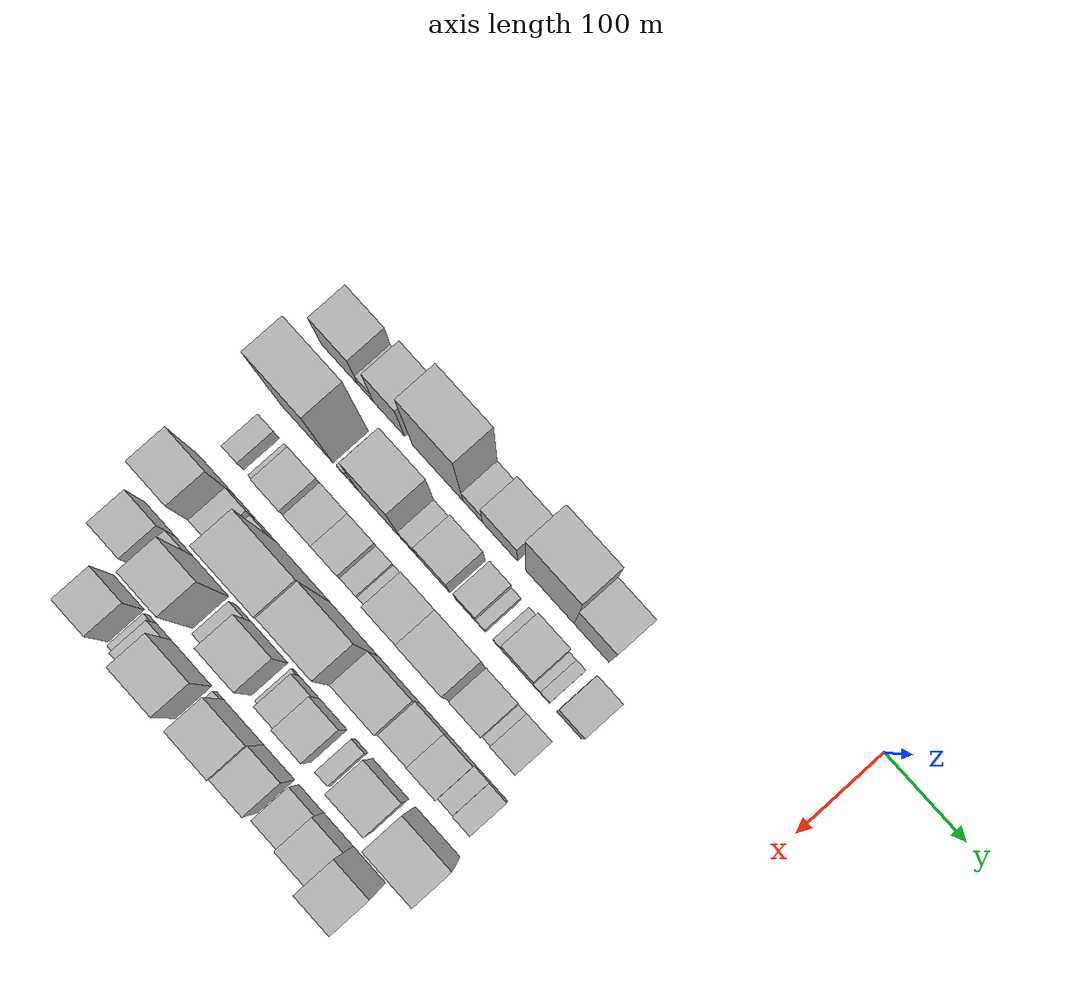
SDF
<sdf version="1.6">
 <world name="default">
  <model name="building_11">
   <static>1</static>
   <pose>100.0000 -549.3161 0 0.000000 0.000000 0.000000</pose>
   <link name="link">
    <pose>0 0 43.50 0 0 0</pose>
    <collision name="collision"><geometry><box><size>40.0000 47.1803 87.0000</size></box></geometry></collision>
    <visual name="visual">
     <cast_shadows>0</cast_shadows>
     <geometry><box><size>40.0000 47.1803 87.0000</size></box></geometry>
     <material>
      <script>
       <uri>model://HANNAS_wall/materials/scripts</uri>
       <uri>model://HANNAS_wall/materials/textures</uri>
       <name>vrc/HANNAS_wall</name>
      </script>
     </material>
    </visual>
   </link>
  </model>
  <model name="building_12">
   <static>1</static>
   <pose>100.0000 -515.8294 0 0.000000 0.000000 0.000000</pose>
   <link name="link">
    <pose>0 0 16.50 0 0 0</pose>
    <collision name="collision"><geometry><box><size>40.0000 19.7931 33.0000</size></box></geometry></collision>
    <visual name="visual">
     <cast_shadows>0</cast_shadows>
     <geometry><box><size>40.0000 19.7931 33.0000</size></box></geometry>
     <material>
      <script>
       <uri>model://HANNAS_wall/materials/scripts</uri>
       <uri>model://HANNAS_wall/materials/textures</uri>
       <name>vrc/HANNAS_wall</name>
      </script>
     </material>
    </visual>
   </link>
  </model>
  <model name="building_13">
   <static>1</static>
   <pose>100.0000 -486.1021 0 0.000000 0.000000 0.000000</pose>
   <link name="link">
    <pose>0 0 52.50 0 0 0</pose>
    <collision name="collision"><geometry><box><size>40.0000 39.6614 105.0000</size></box></geometry></collision>
    <visual name="visual">
     <cast_shadows>0</cast_shadows>
     <geometry><box><size>40.0000 39.6614 105.0000</size></box></geometry>
     <material>
      <script>
       <uri>model://HANNAS_wall/materials/scripts</uri>
       <uri>model://HANNAS_wall/materials/textures</uri>
       <name>vrc/HANNAS_wall</name>
      </script>
     </material>
    </visual>
   </link>
  </model>
  <model name="building_14">
   <static>1</static>
   <pose>100.0000 -424.4190 0 0.000000 0.000000 0.000000</pose>
   <link name="link">
    <pose>0 0 93.00 0 0 0</pose>
    <collision name="collision"><geometry><box><size>40.0000 63.7049 186.0000</size></box></geometry></collision>
    <visual name="visual">
     <cast_shadows>0</cast_shadows>
     <geometry><box><size>40.0000 63.7049 186.0000</size></box></geometry>
     <material>
      <script>
       <uri>model://HANNAS_wall/materials/scripts</uri>
       <uri>model://HANNAS_wall/materials/textures</uri>
       <name>vrc/HANNAS_wall</name>
      </script>
     </material>
    </visual>
   </link>
  </model>
  <model name="building_15">
   <static>1</static>
   <pose>100.0000 -380.0827 0 0.000000 0.000000 0.000000</pose>
   <link name="link">
    <pose>0 0 21.00 0 0 0</pose>
    <collision name="collision"><geometry><box><size>40.0000 24.9676 42.0000</size></box></geometry></collision>
    <visual name="visual">
     <cast_shadows>0</cast_shadows>
     <geometry><box><size>40.0000 24.9676 42.0000</size></box></geometry>
     <material>
      <script>
       <uri>model://HANNAS_wall/materials/scripts</uri>
       <uri>model://HANNAS_wall/materials/textures</uri>
       <name>vrc/HANNAS_wall</name>
      </script>
     </material>
    </visual>
   </link>
  </model>
  <model name="building_16">
   <static>1</static>
   <pose>100.0000 -345.6989 0 0.000000 0.000000 0.000000</pose>
   <link name="link">
    <pose>0 0 39.00 0 0 0</pose>
    <collision name="collision"><geometry><box><size>40.0000 43.8001 78.0000</size></box></geometry></collision>
    <visual name="visual">
     <cast_shadows>0</cast_shadows>
     <geometry><box><size>40.0000 43.8001 78.0000</size></box></geometry>
     <material>
      <script>
       <uri>model://HANNAS_wall/materials/scripts</uri>
       <uri>model://HANNAS_wall/materials/textures</uri>
       <name>vrc/HANNAS_wall</name>
      </script>
     </material>
    </visual>
   </link>
  </model>
  <model name="building_17">
   <static>1</static>
   <pose>100.0000 -283.1865 0 0.000000 0.000000 0.000000</pose>
   <link name="link">
    <pose>0 0 100.50 0 0 0</pose>
    <collision name="collision"><geometry><box><size>40.0000 61.2247 201.0000</size></box></geometry></collision>
    <visual name="visual">
     <cast_shadows>0</cast_shadows>
     <geometry><box><size>40.0000 61.2247 201.0000</size></box></geometry>
     <material>
      <script>
       <uri>model://HANNAS_wall/materials/scripts</uri>
       <uri>model://HANNAS_wall/materials/textures</uri>
       <name>vrc/HANNAS_wall</name>
      </script>
     </material>
    </visual>
   </link>
  </model>
  <model name="building_18">
   <static>1</static>
   <pose>100.0000 -230.8373 0 0.000000 0.000000 0.000000</pose>
   <link name="link">
    <pose>0 0 64.50 0 0 0</pose>
    <collision name="collision"><geometry><box><size>40.0000 43.4737 129.0000</size></box></geometry></collision>
    <visual name="visual">
     <cast_shadows>0</cast_shadows>
     <geometry><box><size>40.0000 43.4737 129.0000</size></box></geometry>
     <material>
      <script>
       <uri>model://HANNAS_wall/materials/scripts</uri>
       <uri>model://HANNAS_wall/materials/textures</uri>
       <name>vrc/HANNAS_wall</name>
      </script>
     </material>
    </visual>
   </link>
  </model>
  <model name="building_62">
   <static>1</static>
   <pose>160.0000 -522.8140 0 0.000000 0.000000 0.000000</pose>
   <link name="link">
    <pose>0 0 96.00 0 0 0</pose>
    <collision name="collision"><geometry><box><size>40.0000 65.7498 192.0000</size></box></geometry></collision>
    <visual name="visual">
     <cast_shadows>0</cast_shadows>
     <geometry><box><size>40.0000 65.7498 192.0000</size></box></geometry>
     <material>
      <script>
       <uri>model://HANNAS_wall/materials/scripts</uri>
       <uri>model://HANNAS_wall/materials/textures</uri>
       <name>vrc/HANNAS_wall</name>
      </script>
     </material>
    </visual>
   </link>
  </model>
  <model name="building_63">
   <static>1</static>
   <pose>160.0000 -477.0255 0 0.000000 0.000000 0.000000</pose>
   <link name="link">
    <pose>0 0 12.00 0 0 0</pose>
    <collision name="collision"><geometry><box><size>40.0000 9.8272 24.0000</size></box></geometry></collision>
    <visual name="visual">
     <cast_shadows>0</cast_shadows>
     <geometry><box><size>40.0000 9.8272 24.0000</size></box></geometry>
     <material>
      <script>
       <uri>model://HANNAS_wall/materials/scripts</uri>
       <uri>model://HANNAS_wall/materials/textures</uri>
       <name>vrc/HANNAS_wall</name>
      </script>
     </material>
    </visual>
   </link>
  </model>
  <model name="building_64">
   <static>1</static>
   <pose>160.0000 -461.7364 0 0.000000 0.000000 0.000000</pose>
   <link name="link">
    <pose>0 0 12.00 0 0 0</pose>
    <collision name="collision"><geometry><box><size>40.0000 10.7509 24.0000</size></box></geometry></collision>
    <visual name="visual">
     <cast_shadows>0</cast_shadows>
     <geometry><box><size>40.0000 10.7509 24.0000</size></box></geometry>
     <material>
      <script>
       <uri>model://HANNAS_wall/materials/scripts</uri>
       <uri>model://HANNAS_wall/materials/textures</uri>
       <name>vrc/HANNAS_wall</name>
      </script>
     </material>
    </visual>
   </link>
  </model>
  <model name="building_65">
   <static>1</static>
   <pose>160.0000 -429.8946 0 0.000000 0.000000 0.000000</pose>
   <link name="link">
    <pose>0 0 73.50 0 0 0</pose>
    <collision name="collision"><geometry><box><size>40.0000 52.9326 147.0000</size></box></geometry></collision>
    <visual name="visual">
     <cast_shadows>0</cast_shadows>
     <geometry><box><size>40.0000 52.9326 147.0000</size></box></geometry>
     <material>
      <script>
       <uri>model://HANNAS_wall/materials/scripts</uri>
       <uri>model://HANNAS_wall/materials/textures</uri>
       <name>vrc/HANNAS_wall</name>
      </script>
     </material>
    </visual>
   </link>
  </model>
  <model name="building_66">
   <static>1</static>
   <pose>160.0000 -392.6424 0 0.000000 0.000000 0.000000</pose>
   <link name="link">
    <pose>0 0 21.00 0 0 0</pose>
    <collision name="collision"><geometry><box><size>40.0000 21.5718 42.0000</size></box></geometry></collision>
    <visual name="visual">
     <cast_shadows>0</cast_shadows>
     <geometry><box><size>40.0000 21.5718 42.0000</size></box></geometry>
     <material>
      <script>
       <uri>model://HANNAS_wall/materials/scripts</uri>
       <uri>model://HANNAS_wall/materials/textures</uri>
       <name>vrc/HANNAS_wall</name>
      </script>
     </material>
    </visual>
   </link>
  </model>
  <model name="building_67">
   <static>1</static>
   <pose>160.0000 -361.8593 0 0.000000 0.000000 0.000000</pose>
   <link name="link">
    <pose>0 0 34.50 0 0 0</pose>
    <collision name="collision"><geometry><box><size>40.0000 39.9946 69.0000</size></box></geometry></collision>
    <visual name="visual">
     <cast_shadows>0</cast_shadows>
     <geometry><box><size>40.0000 39.9946 69.0000</size></box></geometry>
     <material>
      <script>
       <uri>model://HANNAS_wall/materials/scripts</uri>
       <uri>model://HANNAS_wall/materials/textures</uri>
       <name>vrc/HANNAS_wall</name>
      </script>
     </material>
    </visual>
   </link>
  </model>
  <model name="building_68">
   <static>1</static>
   <pose>160.0000 -321.7250 0 0.000000 0.000000 0.000000</pose>
   <link name="link">
    <pose>0 0 24.00 0 0 0</pose>
    <collision name="collision"><geometry><box><size>40.0000 26.2739 48.0000</size></box></geometry></collision>
    <visual name="visual">
     <cast_shadows>0</cast_shadows>
     <geometry><box><size>40.0000 26.2739 48.0000</size></box></geometry>
     <material>
      <script>
       <uri>model://HANNAS_wall/materials/scripts</uri>
       <uri>model://HANNAS_wall/materials/textures</uri>
       <name>vrc/HANNAS_wall</name>
      </script>
     </material>
    </visual>
   </link>
  </model>
  <model name="building_69">
   <static>1</static>
   <pose>160.0000 -302.8230 0 0.000000 0.000000 0.000000</pose>
   <link name="link">
    <pose>0 0 12.00 0 0 0</pose>
    <collision name="collision"><geometry><box><size>40.0000 11.5301 24.0000</size></box></geometry></collision>
    <visual name="visual">
     <cast_shadows>0</cast_shadows>
     <geometry><box><size>40.0000 11.5301 24.0000</size></box></geometry>
     <material>
      <script>
       <uri>model://HANNAS_wall/materials/scripts</uri>
       <uri>model://HANNAS_wall/materials/textures</uri>
       <name>vrc/HANNAS_wall</name>
      </script>
     </material>
    </visual>
   </link>
  </model>
  <model name="building_70">
   <static>1</static>
   <pose>160.0000 -281.6343 0 0.000000 0.000000 0.000000</pose>
   <link name="link">
    <pose>0 0 12.00 0 0 0</pose>
    <collision name="collision"><geometry><box><size>40.0000 10.8474 24.0000</size></box></geometry></collision>
    <visual name="visual">
     <cast_shadows>0</cast_shadows>
     <geometry><box><size>40.0000 10.8474 24.0000</size></box></geometry>
     <material>
      <script>
       <uri>model://HANNAS_wall/materials/scripts</uri>
       <uri>model://HANNAS_wall/materials/textures</uri>
       <name>vrc/HANNAS_wall</name>
      </script>
     </material>
    </visual>
   </link>
  </model>
  <model name="building_71">
   <static>1</static>
   <pose>160.0000 -256.8129 0 0.000000 0.000000 0.000000</pose>
   <link name="link">
    <pose>0 0 36.00 0 0 0</pose>
    <collision name="collision"><geometry><box><size>40.0000 38.7953 72.0000</size></box></geometry></collision>
    <visual name="visual">
     <cast_shadows>0</cast_shadows>
     <geometry><box><size>40.0000 38.7953 72.0000</size></box></geometry>
     <material>
      <script>
       <uri>model://HANNAS_wall/materials/scripts</uri>
       <uri>model://HANNAS_wall/materials/textures</uri>
       <name>vrc/HANNAS_wall</name>
      </script>
     </material>
    </visual>
   </link>
  </model>
  <model name="building_72">
   <static>1</static>
   <pose>160.0000 -233.0048 0 0.000000 0.000000 0.000000</pose>
   <link name="link">
    <pose>0 0 10.50 0 0 0</pose>
    <collision name="collision"><geometry><box><size>40.0000 8.8210 21.0000</size></box></geometry></collision>
    <visual name="visual">
     <cast_shadows>0</cast_shadows>
     <geometry><box><size>40.0000 8.8210 21.0000</size></box></geometry>
     <material>
      <script>
       <uri>model://HANNAS_wall/materials/scripts</uri>
       <uri>model://HANNAS_wall/materials/textures</uri>
       <name>vrc/HANNAS_wall</name>
      </script>
     </material>
    </visual>
   </link>
  </model>
  <model name="building_73">
   <static>1</static>
   <pose>160.0000 -222.7532 0 0.000000 0.000000 0.000000</pose>
   <link name="link">
    <pose>0 0 12.00 0 0 0</pose>
    <collision name="collision"><geometry><box><size>40.0000 11.6821 24.0000</size></box></geometry></collision>
    <visual name="visual">
     <cast_shadows>0</cast_shadows>
     <geometry><box><size>40.0000 11.6821 24.0000</size></box></geometry>
     <material>
      <script>
       <uri>model://HANNAS_wall/materials/scripts</uri>
       <uri>model://HANNAS_wall/materials/textures</uri>
       <name>vrc/HANNAS_wall</name>
      </script>
     </material>
    </visual>
   </link>
  </model>
  <model name="building_74">
   <static>1</static>
   <pose>160.0000 -192.8950 0 0.000000 0.000000 0.000000</pose>
   <link name="link">
    <pose>0 0 49.50 0 0 0</pose>
    <collision name="collision"><geometry><box><size>40.0000 30.0343 99.0000</size></box></geometry></collision>
    <visual name="visual">
     <cast_shadows>0</cast_shadows>
     <geometry><box><size>40.0000 30.0343 99.0000</size></box></geometry>
     <material>
      <script>
       <uri>model://HANNAS_wall/materials/scripts</uri>
       <uri>model://HANNAS_wall/materials/textures</uri>
       <name>vrc/HANNAS_wall</name>
      </script>
     </material>
    </visual>
   </link>
  </model>
  <model name="building_119">
   <static>1</static>
   <pose>220.0000 -545.6954 0 0.000000 0.000000 0.000000</pose>
   <link name="link">
    <pose>0 0 16.50 0 0 0</pose>
    <collision name="collision"><geometry><box><size>40.0000 19.6046 33.0000</size></box></geometry></collision>
    <visual name="visual">
     <cast_shadows>0</cast_shadows>
     <geometry><box><size>40.0000 19.6046 33.0000</size></box></geometry>
     <material>
      <script>
       <uri>model://HANNAS_wall/materials/scripts</uri>
       <uri>model://HANNAS_wall/materials/textures</uri>
       <name>vrc/HANNAS_wall</name>
      </script>
     </material>
    </visual>
   </link>
  </model>
  <model name="building_120">
   <static>1</static>
   <pose>220.0000 -521.4734 0 0.000000 0.000000 0.000000</pose>
   <link name="link">
    <pose>0 0 9.00 0 0 0</pose>
    <collision name="collision"><geometry><box><size>40.0000 8.8394 18.0000</size></box></geometry></collision>
    <visual name="visual">
     <cast_shadows>0</cast_shadows>
     <geometry><box><size>40.0000 8.8394 18.0000</size></box></geometry>
     <material>
      <script>
       <uri>model://HANNAS_wall/materials/scripts</uri>
       <uri>model://HANNAS_wall/materials/textures</uri>
       <name>vrc/HANNAS_wall</name>
      </script>
     </material>
    </visual>
   </link>
  </model>
  <model name="building_121">
   <static>1</static>
   <pose>220.0000 -494.6774 0 0.000000 0.000000 0.000000</pose>
   <link name="link">
    <pose>0 0 30.00 0 0 0</pose>
    <collision name="collision"><geometry><box><size>40.0000 34.7525 60.0000</size></box></geometry></collision>
    <visual name="visual">
     <cast_shadows>0</cast_shadows>
     <geometry><box><size>40.0000 34.7525 60.0000</size></box></geometry>
     <material>
      <script>
       <uri>model://HANNAS_wall/materials/scripts</uri>
       <uri>model://HANNAS_wall/materials/textures</uri>
       <name>vrc/HANNAS_wall</name>
      </script>
     </material>
    </visual>
   </link>
  </model>
  <model name="building_122">
   <static>1</static>
   <pose>220.0000 -456.3881 0 0.000000 0.000000 0.000000</pose>
   <link name="link">
    <pose>0 0 28.50 0 0 0</pose>
    <collision name="collision"><geometry><box><size>40.0000 33.8260 57.0000</size></box></geometry></collision>
    <visual name="visual">
     <cast_shadows>0</cast_shadows>
     <geometry><box><size>40.0000 33.8260 57.0000</size></box></geometry>
     <material>
      <script>
       <uri>model://HANNAS_wall/materials/scripts</uri>
       <uri>model://HANNAS_wall/materials/textures</uri>
       <name>vrc/HANNAS_wall</name>
      </script>
     </material>
    </visual>
   </link>
  </model>
  <model name="building_123">
   <static>1</static>
   <pose>220.0000 -423.2749 0 0.000000 0.000000 0.000000</pose>
   <link name="link">
    <pose>0 0 28.50 0 0 0</pose>
    <collision name="collision"><geometry><box><size>40.0000 32.4004 57.0000</size></box></geometry></collision>
    <visual name="visual">
     <cast_shadows>0</cast_shadows>
     <geometry><box><size>40.0000 32.4004 57.0000</size></box></geometry>
     <material>
      <script>
       <uri>model://HANNAS_wall/materials/scripts</uri>
       <uri>model://HANNAS_wall/materials/textures</uri>
       <name>vrc/HANNAS_wall</name>
      </script>
     </material>
    </visual>
   </link>
  </model>
  <model name="building_124">
   <static>1</static>
   <pose>220.0000 -397.0881 0 0.000000 0.000000 0.000000</pose>
   <link name="link">
    <pose>0 0 19.50 0 0 0</pose>
    <collision name="collision"><geometry><box><size>40.0000 19.9731 39.0000</size></box></geometry></collision>
    <visual name="visual">
     <cast_shadows>0</cast_shadows>
     <geometry><box><size>40.0000 19.9731 39.0000</size></box></geometry>
     <material>
      <script>
       <uri>model://HANNAS_wall/materials/scripts</uri>
       <uri>model://HANNAS_wall/materials/textures</uri>
       <name>vrc/HANNAS_wall</name>
      </script>
     </material>
    </visual>
   </link>
  </model>
  <model name="building_125">
   <static>1</static>
   <pose>220.0000 -378.5526 0 0.000000 0.000000 0.000000</pose>
   <link name="link">
    <pose>0 0 15.00 0 0 0</pose>
    <collision name="collision"><geometry><box><size>40.0000 17.0980 30.0000</size></box></geometry></collision>
    <visual name="visual">
     <cast_shadows>0</cast_shadows>
     <geometry><box><size>40.0000 17.0980 30.0000</size></box></geometry>
     <material>
      <script>
       <uri>model://HANNAS_wall/materials/scripts</uri>
       <uri>model://HANNAS_wall/materials/textures</uri>
       <name>vrc/HANNAS_wall</name>
      </script>
     </material>
    </visual>
   </link>
  </model>
  <model name="building_126">
   <static>1</static>
   <pose>220.0000 -346.0891 0 0.000000 0.000000 0.000000</pose>
   <link name="link">
    <pose>0 0 66.00 0 0 0</pose>
    <collision name="collision"><geometry><box><size>40.0000 39.8288 132.0000</size></box></geometry></collision>
    <visual name="visual">
     <cast_shadows>0</cast_shadows>
     <geometry><box><size>40.0000 39.8288 132.0000</size></box></geometry>
     <material>
      <script>
       <uri>model://HANNAS_wall/materials/scripts</uri>
       <uri>model://HANNAS_wall/materials/textures</uri>
       <name>vrc/HANNAS_wall</name>
      </script>
     </material>
    </visual>
   </link>
  </model>
  <model name="building_127">
   <static>1</static>
   <pose>220.0000 -300.0844 0 0.000000 0.000000 0.000000</pose>
   <link name="link">
    <pose>0 0 70.50 0 0 0</pose>
    <collision name="collision"><geometry><box><size>40.0000 52.1806 141.0000</size></box></geometry></collision>
    <visual name="visual">
     <cast_shadows>0</cast_shadows>
     <geometry><box><size>40.0000 52.1806 141.0000</size></box></geometry>
     <material>
      <script>
       <uri>model://HANNAS_wall/materials/scripts</uri>
       <uri>model://HANNAS_wall/materials/textures</uri>
       <name>vrc/HANNAS_wall</name>
      </script>
     </material>
    </visual>
   </link>
  </model>
  <model name="building_128">
   <static>1</static>
   <pose>220.0000 -252.0964 0 0.000000 0.000000 0.000000</pose>
   <link name="link">
    <pose>0 0 37.50 0 0 0</pose>
    <collision name="collision"><geometry><box><size>40.0000 37.7954 75.0000</size></box></geometry></collision>
    <visual name="visual">
     <cast_shadows>0</cast_shadows>
     <geometry><box><size>40.0000 37.7954 75.0000</size></box></geometry>
     <material>
      <script>
       <uri>model://HANNAS_wall/materials/scripts</uri>
       <uri>model://HANNAS_wall/materials/textures</uri>
       <name>vrc/HANNAS_wall</name>
      </script>
     </material>
    </visual>
   </link>
  </model>
  <model name="building_129">
   <static>1</static>
   <pose>220.0000 -228.1270 0 0.000000 0.000000 0.000000</pose>
   <link name="link">
    <pose>0 0 10.50 0 0 0</pose>
    <collision name="collision"><geometry><box><size>40.0000 10.1433 21.0000</size></box></geometry></collision>
    <visual name="visual">
     <cast_shadows>0</cast_shadows>
     <geometry><box><size>40.0000 10.1433 21.0000</size></box></geometry>
     <material>
      <script>
       <uri>model://HANNAS_wall/materials/scripts</uri>
       <uri>model://HANNAS_wall/materials/textures</uri>
       <name>vrc/HANNAS_wall</name>
      </script>
     </material>
    </visual>
   </link>
  </model>
  <model name="building_130">
   <static>1</static>
   <pose>220.0000 -207.7664 0 0.000000 0.000000 0.000000</pose>
   <link name="link">
    <pose>0 0 25.50 0 0 0</pose>
    <collision name="collision"><geometry><box><size>40.0000 30.5780 51.0000</size></box></geometry></collision>
    <visual name="visual">
     <cast_shadows>0</cast_shadows>
     <geometry><box><size>40.0000 30.5780 51.0000</size></box></geometry>
     <material>
      <script>
       <uri>model://HANNAS_wall/materials/scripts</uri>
       <uri>model://HANNAS_wall/materials/textures</uri>
       <name>vrc/HANNAS_wall</name>
      </script>
     </material>
    </visual>
   </link>
  </model>
  <model name="building_174">
   <static>1</static>
   <pose>280.0000 -547.6626 0 0.000000 0.000000 0.000000</pose>
   <link name="link">
    <pose>0 0 63.00 0 0 0</pose>
    <collision name="collision"><geometry><box><size>40.0000 46.7301 126.0000</size></box></geometry></collision>
    <visual name="visual">
     <cast_shadows>0</cast_shadows>
     <geometry><box><size>40.0000 46.7301 126.0000</size></box></geometry>
     <material>
      <script>
       <uri>model://HANNAS_wall/materials/scripts</uri>
       <uri>model://HANNAS_wall/materials/textures</uri>
       <name>vrc/HANNAS_wall</name>
      </script>
     </material>
    </visual>
   </link>
  </model>
  <model name="building_175">
   <static>1</static>
   <pose>280.0000 -511.4150 0 0.000000 0.000000 0.000000</pose>
   <link name="link">
    <pose>0 0 22.50 0 0 0</pose>
    <collision name="collision"><geometry><box><size>40.0000 25.7652 45.0000</size></box></geometry></collision>
    <visual name="visual">
     <cast_shadows>0</cast_shadows>
     <geometry><box><size>40.0000 25.7652 45.0000</size></box></geometry>
     <material>
      <script>
       <uri>model://HANNAS_wall/materials/scripts</uri>
       <uri>model://HANNAS_wall/materials/textures</uri>
       <name>vrc/HANNAS_wall</name>
      </script>
     </material>
    </visual>
   </link>
  </model>
  <model name="building_176">
   <static>1</static>
   <pose>280.0000 -483.0777 0 0.000000 0.000000 0.000000</pose>
   <link name="link">
    <pose>0 0 21.00 0 0 0</pose>
    <collision name="collision"><geometry><box><size>40.0000 22.9094 42.0000</size></box></geometry></collision>
    <visual name="visual">
     <cast_shadows>0</cast_shadows>
     <geometry><box><size>40.0000 22.9094 42.0000</size></box></geometry>
     <material>
      <script>
       <uri>model://HANNAS_wall/materials/scripts</uri>
       <uri>model://HANNAS_wall/materials/textures</uri>
       <name>vrc/HANNAS_wall</name>
      </script>
     </material>
    </visual>
   </link>
  </model>
  <model name="building_177">
   <static>1</static>
   <pose>280.0000 -437.2224 0 0.000000 0.000000 0.000000</pose>
   <link name="link">
    <pose>0 0 100.50 0 0 0</pose>
    <collision name="collision"><geometry><box><size>40.0000 68.8013 201.0000</size></box></geometry></collision>
    <visual name="visual">
     <cast_shadows>0</cast_shadows>
     <geometry><box><size>40.0000 68.8013 201.0000</size></box></geometry>
     <material>
      <script>
       <uri>model://HANNAS_wall/materials/scripts</uri>
       <uri>model://HANNAS_wall/materials/textures</uri>
       <name>vrc/HANNAS_wall</name>
      </script>
     </material>
    </visual>
   </link>
  </model>
  <model name="building_178">
   <static>1</static>
   <pose>280.0000 -372.4052 0 0.000000 0.000000 0.000000</pose>
   <link name="link">
    <pose>0 0 96.00 0 0 0</pose>
    <collision name="collision"><geometry><box><size>40.0000 60.8330 192.0000</size></box></geometry></collision>
    <visual name="visual">
     <cast_shadows>0</cast_shadows>
     <geometry><box><size>40.0000 60.8330 192.0000</size></box></geometry>
     <material>
      <script>
       <uri>model://HANNAS_wall/materials/scripts</uri>
       <uri>model://HANNAS_wall/materials/textures</uri>
       <name>vrc/HANNAS_wall</name>
      </script>
     </material>
    </visual>
   </link>
  </model>
  <model name="building_179">
   <static>1</static>
   <pose>280.0000 -315.8301 0 0.000000 0.000000 0.000000</pose>
   <link name="link">
    <pose>0 0 45.00 0 0 0</pose>
    <collision name="collision"><geometry><box><size>40.0000 52.3173 90.0000</size></box></geometry></collision>
    <visual name="visual">
     <cast_shadows>0</cast_shadows>
     <geometry><box><size>40.0000 52.3173 90.0000</size></box></geometry>
     <material>
      <script>
       <uri>model://HANNAS_wall/materials/scripts</uri>
       <uri>model://HANNAS_wall/materials/textures</uri>
       <name>vrc/HANNAS_wall</name>
      </script>
     </material>
    </visual>
   </link>
  </model>
  <model name="building_180">
   <static>1</static>
   <pose>280.0000 -272.2907 0 0.000000 0.000000 0.000000</pose>
   <link name="link">
    <pose>0 0 30.00 0 0 0</pose>
    <collision name="collision"><geometry><box><size>40.0000 34.7616 60.0000</size></box></geometry></collision>
    <visual name="visual">
     <cast_shadows>0</cast_shadows>
     <geometry><box><size>40.0000 34.7616 60.0000</size></box></geometry>
     <material>
      <script>
       <uri>model://HANNAS_wall/materials/scripts</uri>
       <uri>model://HANNAS_wall/materials/textures</uri>
       <name>vrc/HANNAS_wall</name>
      </script>
     </material>
    </visual>
   </link>
  </model>
  <model name="building_181">
   <static>1</static>
   <pose>280.0000 -237.5047 0 0.000000 0.000000 0.000000</pose>
   <link name="link">
    <pose>0 0 33.00 0 0 0</pose>
    <collision name="collision"><geometry><box><size>40.0000 34.8105 66.0000</size></box></geometry></collision>
    <visual name="visual">
     <cast_shadows>0</cast_shadows>
     <geometry><box><size>40.0000 34.8105 66.0000</size></box></geometry>
     <material>
      <script>
       <uri>model://HANNAS_wall/materials/scripts</uri>
       <uri>model://HANNAS_wall/materials/textures</uri>
       <name>vrc/HANNAS_wall</name>
      </script>
     </material>
    </visual>
   </link>
  </model>
  <model name="building_182">
   <static>1</static>
   <pose>280.0000 -210.8995 0 0.000000 0.000000 0.000000</pose>
   <link name="link">
    <pose>0 0 16.50 0 0 0</pose>
    <collision name="collision"><geometry><box><size>40.0000 18.4000 33.0000</size></box></geometry></collision>
    <visual name="visual">
     <cast_shadows>0</cast_shadows>
     <geometry><box><size>40.0000 18.4000 33.0000</size></box></geometry>
     <material>
      <script>
       <uri>model://HANNAS_wall/materials/scripts</uri>
       <uri>model://HANNAS_wall/materials/textures</uri>
       <name>vrc/HANNAS_wall</name>
      </script>
     </material>
    </visual>
   </link>
  </model>
  <model name="building_183">
   <static>1</static>
   <pose>280.0000 -190.9857 0 0.000000 0.000000 0.000000</pose>
   <link name="link">
    <pose>0 0 21.00 0 0 0</pose>
    <collision name="collision"><geometry><box><size>40.0000 21.4276 42.0000</size></box></geometry></collision>
    <visual name="visual">
     <cast_shadows>0</cast_shadows>
     <geometry><box><size>40.0000 21.4276 42.0000</size></box></geometry>
     <material>
      <script>
       <uri>model://HANNAS_wall/materials/scripts</uri>
       <uri>model://HANNAS_wall/materials/textures</uri>
       <name>vrc/HANNAS_wall</name>
      </script>
     </material>
    </visual>
   </link>
  </model>
  <model name="building_224">
   <static>1</static>
   <pose>340.0000 -551.7346 0 0.000000 0.000000 0.000000</pose>
   <link name="link">
    <pose>0 0 34.50 0 0 0</pose>
    <collision name="collision"><geometry><box><size>40.0000 38.9900 69.0000</size></box></geometry></collision>
    <visual name="visual">
     <cast_shadows>0</cast_shadows>
     <geometry><box><size>40.0000 38.9900 69.0000</size></box></geometry>
     <material>
      <script>
       <uri>model://HANNAS_wall/materials/scripts</uri>
       <uri>model://HANNAS_wall/materials/textures</uri>
       <name>vrc/HANNAS_wall</name>
      </script>
     </material>
    </visual>
   </link>
  </model>
  <model name="building_225">
   <static>1</static>
   <pose>340.0000 -521.0948 0 0.000000 0.000000 0.000000</pose>
   <link name="link">
    <pose>0 0 19.50 0 0 0</pose>
    <collision name="collision"><geometry><box><size>40.0000 22.2896 39.0000</size></box></geometry></collision>
    <visual name="visual">
     <cast_shadows>0</cast_shadows>
     <geometry><box><size>40.0000 22.2896 39.0000</size></box></geometry>
     <material>
      <script>
       <uri>model://HANNAS_wall/materials/scripts</uri>
       <uri>model://HANNAS_wall/materials/textures</uri>
       <name>vrc/HANNAS_wall</name>
      </script>
     </material>
    </visual>
   </link>
  </model>
  <model name="building_226">
   <static>1</static>
   <pose>340.0000 -486.7670 0 0.000000 0.000000 0.000000</pose>
   <link name="link">
    <pose>0 0 66.00 0 0 0</pose>
    <collision name="collision"><geometry><box><size>40.0000 46.3659 132.0000</size></box></geometry></collision>
    <visual name="visual">
     <cast_shadows>0</cast_shadows>
     <geometry><box><size>40.0000 46.3659 132.0000</size></box></geometry>
     <material>
      <script>
       <uri>model://HANNAS_wall/materials/scripts</uri>
       <uri>model://HANNAS_wall/materials/textures</uri>
       <name>vrc/HANNAS_wall</name>
      </script>
     </material>
    </visual>
   </link>
  </model>
  <model name="building_227">
   <static>1</static>
   <pose>340.0000 -444.9211 0 0.000000 0.000000 0.000000</pose>
   <link name="link">
    <pose>0 0 16.50 0 0 0</pose>
    <collision name="collision"><geometry><box><size>40.0000 19.3260 33.0000</size></box></geometry></collision>
    <visual name="visual">
     <cast_shadows>0</cast_shadows>
     <geometry><box><size>40.0000 19.3260 33.0000</size></box></geometry>
     <material>
      <script>
       <uri>model://HANNAS_wall/materials/scripts</uri>
       <uri>model://HANNAS_wall/materials/textures</uri>
       <name>vrc/HANNAS_wall</name>
      </script>
     </material>
    </visual>
   </link>
  </model>
  <model name="building_228">
   <static>1</static>
   <pose>340.0000 -411.8117 0 0.000000 0.000000 0.000000</pose>
   <link name="link">
    <pose>0 0 42.00 0 0 0</pose>
    <collision name="collision"><geometry><box><size>40.0000 46.8929 84.0000</size></box></geometry></collision>
    <visual name="visual">
     <cast_shadows>0</cast_shadows>
     <geometry><box><size>40.0000 46.8929 84.0000</size></box></geometry>
     <material>
      <script>
       <uri>model://HANNAS_wall/materials/scripts</uri>
       <uri>model://HANNAS_wall/materials/textures</uri>
       <name>vrc/HANNAS_wall</name>
      </script>
     </material>
    </visual>
   </link>
  </model>
  <model name="building_229">
   <static>1</static>
   <pose>340.0000 -377.7807 0 0.000000 0.000000 0.000000</pose>
   <link name="link">
    <pose>0 0 7.50 0 0 0</pose>
    <collision name="collision"><geometry><box><size>40.0000 7.1691 15.0000</size></box></geometry></collision>
    <visual name="visual">
     <cast_shadows>0</cast_shadows>
     <geometry><box><size>40.0000 7.1691 15.0000</size></box></geometry>
     <material>
      <script>
       <uri>model://HANNAS_wall/materials/scripts</uri>
       <uri>model://HANNAS_wall/materials/textures</uri>
       <name>vrc/HANNAS_wall</name>
      </script>
     </material>
    </visual>
   </link>
  </model>
  <model name="building_230">
   <static>1</static>
   <pose>340.0000 -361.6612 0 0.000000 0.000000 0.000000</pose>
   <link name="link">
    <pose>0 0 24.00 0 0 0</pose>
    <collision name="collision"><geometry><box><size>40.0000 25.0698 48.0000</size></box></geometry></collision>
    <visual name="visual">
     <cast_shadows>0</cast_shadows>
     <geometry><box><size>40.0000 25.0698 48.0000</size></box></geometry>
     <material>
      <script>
       <uri>model://HANNAS_wall/materials/scripts</uri>
       <uri>model://HANNAS_wall/materials/textures</uri>
       <name>vrc/HANNAS_wall</name>
      </script>
     </material>
    </visual>
   </link>
  </model>
  <model name="building_231">
   <static>1</static>
   <pose>340.0000 -331.2538 0 0.000000 0.000000 0.000000</pose>
   <link name="link">
    <pose>0 0 31.50 0 0 0</pose>
    <collision name="collision"><geometry><box><size>40.0000 35.7452 63.0000</size></box></geometry></collision>
    <visual name="visual">
     <cast_shadows>0</cast_shadows>
     <geometry><box><size>40.0000 35.7452 63.0000</size></box></geometry>
     <material>
      <script>
       <uri>model://HANNAS_wall/materials/scripts</uri>
       <uri>model://HANNAS_wall/materials/textures</uri>
       <name>vrc/HANNAS_wall</name>
      </script>
     </material>
    </visual>
   </link>
  </model>
  <model name="building_232">
   <static>1</static>
   <pose>340.0000 -295.5017 0 0.000000 0.000000 0.000000</pose>
   <link name="link">
    <pose>0 0 15.00 0 0 0</pose>
    <collision name="collision"><geometry><box><size>40.0000 15.7589 30.0000</size></box></geometry></collision>
    <visual name="visual">
     <cast_shadows>0</cast_shadows>
     <geometry><box><size>40.0000 15.7589 30.0000</size></box></geometry>
     <material>
      <script>
       <uri>model://HANNAS_wall/materials/scripts</uri>
       <uri>model://HANNAS_wall/materials/textures</uri>
       <name>vrc/HANNAS_wall</name>
      </script>
     </material>
    </visual>
   </link>
  </model>
  <model name="building_233">
   <static>1</static>
   <pose>340.0000 -258.8872 0 0.000000 0.000000 0.000000</pose>
   <link name="link">
    <pose>0 0 39.00 0 0 0</pose>
    <collision name="collision"><geometry><box><size>40.0000 45.4701 78.0000</size></box></geometry></collision>
    <visual name="visual">
     <cast_shadows>0</cast_shadows>
     <geometry><box><size>40.0000 45.4701 78.0000</size></box></geometry>
     <material>
      <script>
       <uri>model://HANNAS_wall/materials/scripts</uri>
       <uri>model://HANNAS_wall/materials/textures</uri>
       <name>vrc/HANNAS_wall</name>
      </script>
     </material>
    </visual>
   </link>
  </model>
  <model name="building_234">
   <static>1</static>
   <pose>340.0000 -200.1790 0 0.000000 0.000000 0.000000</pose>
   <link name="link">
    <pose>0 0 70.50 0 0 0</pose>
    <collision name="collision"><geometry><box><size>40.0000 55.9464 141.0000</size></box></geometry></collision>
    <visual name="visual">
     <cast_shadows>0</cast_shadows>
     <geometry><box><size>40.0000 55.9464 141.0000</size></box></geometry>
     <material>
      <script>
       <uri>model://HANNAS_wall/materials/scripts</uri>
       <uri>model://HANNAS_wall/materials/textures</uri>
       <name>vrc/HANNAS_wall</name>
      </script>
     </material>
    </visual>
   </link>
  </model>
  <model name="building_275">
   <static>1</static>
   <pose>400.0000 -522.1415 0 0.000000 0.000000 0.000000</pose>
   <link name="link">
    <pose>0 0 37.50 0 0 0</pose>
    <collision name="collision"><geometry><box><size>40.0000 39.6422 75.0000</size></box></geometry></collision>
    <visual name="visual">
     <cast_shadows>0</cast_shadows>
     <geometry><box><size>40.0000 39.6422 75.0000</size></box></geometry>
     <material>
      <script>
       <uri>model://HANNAS_wall/materials/scripts</uri>
       <uri>model://HANNAS_wall/materials/textures</uri>
       <name>vrc/HANNAS_wall</name>
      </script>
     </material>
    </visual>
   </link>
  </model>
  <model name="building_276">
   <static>1</static>
   <pose>400.0000 -491.8782 0 0.000000 0.000000 0.000000</pose>
   <link name="link">
    <pose>0 0 10.50 0 0 0</pose>
    <collision name="collision"><geometry><box><size>40.0000 8.8844 21.0000</size></box></geometry></collision>
    <visual name="visual">
     <cast_shadows>0</cast_shadows>
     <geometry><box><size>40.0000 8.8844 21.0000</size></box></geometry>
     <material>
      <script>
       <uri>model://HANNAS_wall/materials/scripts</uri>
       <uri>model://HANNAS_wall/materials/textures</uri>
       <name>vrc/HANNAS_wall</name>
      </script>
     </material>
    </visual>
   </link>
  </model>
  <model name="building_277">
   <static>1</static>
   <pose>400.0000 -478.1543 0 0.000000 0.000000 0.000000</pose>
   <link name="link">
    <pose>0 0 18.00 0 0 0</pose>
    <collision name="collision"><geometry><box><size>40.0000 18.5635 36.0000</size></box></geometry></collision>
    <visual name="visual">
     <cast_shadows>0</cast_shadows>
     <geometry><box><size>40.0000 18.5635 36.0000</size></box></geometry>
     <material>
      <script>
       <uri>model://HANNAS_wall/materials/scripts</uri>
       <uri>model://HANNAS_wall/materials/textures</uri>
       <name>vrc/HANNAS_wall</name>
      </script>
     </material>
    </visual>
   </link>
  </model>
  <model name="building_278">
   <static>1</static>
   <pose>400.0000 -442.5537 0 0.000000 0.000000 0.000000</pose>
   <link name="link">
    <pose>0 0 45.00 0 0 0</pose>
    <collision name="collision"><geometry><box><size>40.0000 52.6378 90.0000</size></box></geometry></collision>
    <visual name="visual">
     <cast_shadows>0</cast_shadows>
     <geometry><box><size>40.0000 52.6378 90.0000</size></box></geometry>
     <material>
      <script>
       <uri>model://HANNAS_wall/materials/scripts</uri>
       <uri>model://HANNAS_wall/materials/textures</uri>
       <name>vrc/HANNAS_wall</name>
      </script>
     </material>
    </visual>
   </link>
  </model>
  <model name="building_279">
   <static>1</static>
   <pose>400.0000 -405.9750 0 0.000000 0.000000 0.000000</pose>
   <link name="link">
    <pose>0 0 9.00 0 0 0</pose>
    <collision name="collision"><geometry><box><size>40.0000 8.5195 18.0000</size></box></geometry></collision>
    <visual name="visual">
     <cast_shadows>0</cast_shadows>
     <geometry><box><size>40.0000 8.5195 18.0000</size></box></geometry>
     <material>
      <script>
       <uri>model://HANNAS_wall/materials/scripts</uri>
       <uri>model://HANNAS_wall/materials/textures</uri>
       <name>vrc/HANNAS_wall</name>
      </script>
     </material>
    </visual>
   </link>
  </model>
  <model name="building_280">
   <static>1</static>
   <pose>400.0000 -376.1663 0 0.000000 0.000000 0.000000</pose>
   <link name="link">
    <pose>0 0 43.50 0 0 0</pose>
    <collision name="collision"><geometry><box><size>40.0000 51.0979 87.0000</size></box></geometry></collision>
    <visual name="visual">
     <cast_shadows>0</cast_shadows>
     <geometry><box><size>40.0000 51.0979 87.0000</size></box></geometry>
     <material>
      <script>
       <uri>model://HANNAS_wall/materials/scripts</uri>
       <uri>model://HANNAS_wall/materials/textures</uri>
       <name>vrc/HANNAS_wall</name>
      </script>
     </material>
    </visual>
   </link>
  </model>
  <model name="building_281">
   <static>1</static>
   <pose>400.0000 -331.0538 0 0.000000 0.000000 0.000000</pose>
   <link name="link">
    <pose>0 0 39.00 0 0 0</pose>
    <collision name="collision"><geometry><box><size>40.0000 39.1271 78.0000</size></box></geometry></collision>
    <visual name="visual">
     <cast_shadows>0</cast_shadows>
     <geometry><box><size>40.0000 39.1271 78.0000</size></box></geometry>
     <material>
      <script>
       <uri>model://HANNAS_wall/materials/scripts</uri>
       <uri>model://HANNAS_wall/materials/textures</uri>
       <name>vrc/HANNAS_wall</name>
      </script>
     </material>
    </visual>
   </link>
  </model>
  <model name="building_282">
   <static>1</static>
   <pose>400.0000 -290.9684 0 0.000000 0.000000 0.000000</pose>
   <link name="link">
    <pose>0 0 28.50 0 0 0</pose>
    <collision name="collision"><geometry><box><size>40.0000 31.0437 57.0000</size></box></geometry></collision>
    <visual name="visual">
     <cast_shadows>0</cast_shadows>
     <geometry><box><size>40.0000 31.0437 57.0000</size></box></geometry>
     <material>
      <script>
       <uri>model://HANNAS_wall/materials/scripts</uri>
       <uri>model://HANNAS_wall/materials/textures</uri>
       <name>vrc/HANNAS_wall</name>
      </script>
     </material>
    </visual>
   </link>
  </model>
  <model name="building_283">
   <static>1</static>
   <pose>400.0000 -256.8191 0 0.000000 0.000000 0.000000</pose>
   <link name="link">
    <pose>0 0 36.00 0 0 0</pose>
    <collision name="collision"><geometry><box><size>40.0000 37.2550 72.0000</size></box></geometry></collision>
    <visual name="visual">
     <cast_shadows>0</cast_shadows>
     <geometry><box><size>40.0000 37.2550 72.0000</size></box></geometry>
     <material>
      <script>
       <uri>model://HANNAS_wall/materials/scripts</uri>
       <uri>model://HANNAS_wall/materials/textures</uri>
       <name>vrc/HANNAS_wall</name>
      </script>
     </material>
    </visual>
   </link>
  </model>
  <model name="building_284">
   <static>1</static>
   <pose>400.0000 -217.8926 0 0.000000 0.000000 0.000000</pose>
   <link name="link">
    <pose>0 0 67.50 0 0 0</pose>
    <collision name="collision"><geometry><box><size>40.0000 40.5979 135.0000</size></box></geometry></collision>
    <visual name="visual">
     <cast_shadows>0</cast_shadows>
     <geometry><box><size>40.0000 40.5979 135.0000</size></box></geometry>
     <material>
      <script>
       <uri>model://HANNAS_wall/materials/scripts</uri>
       <uri>model://HANNAS_wall/materials/textures</uri>
       <name>vrc/HANNAS_wall</name>
      </script>
     </material>
    </visual>
   </link>
  </model>
 </world>
</sdf>
